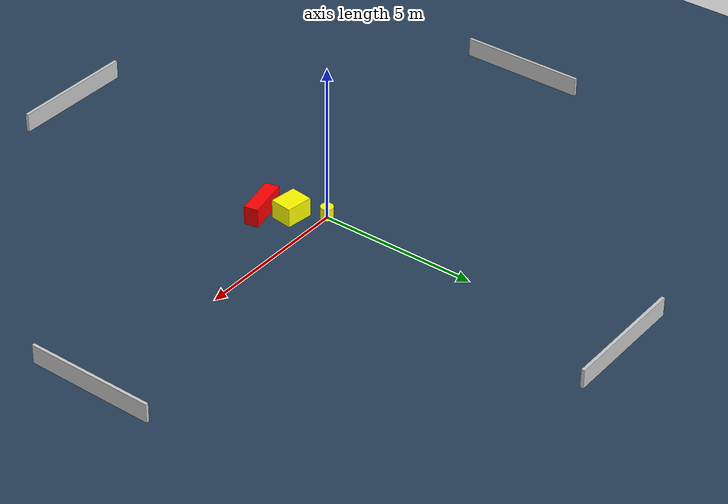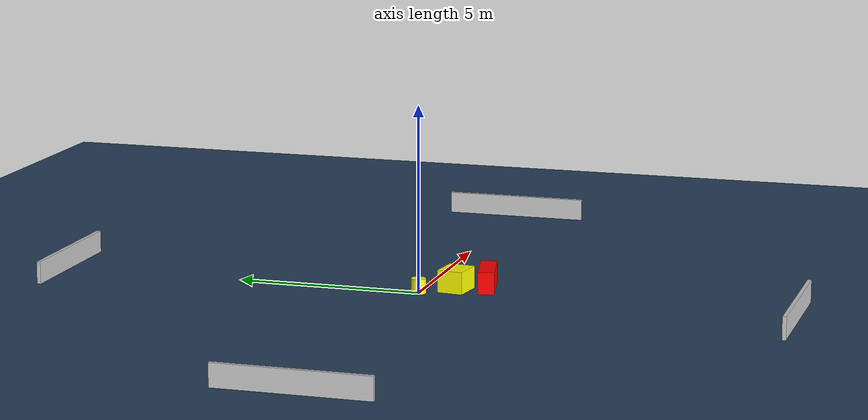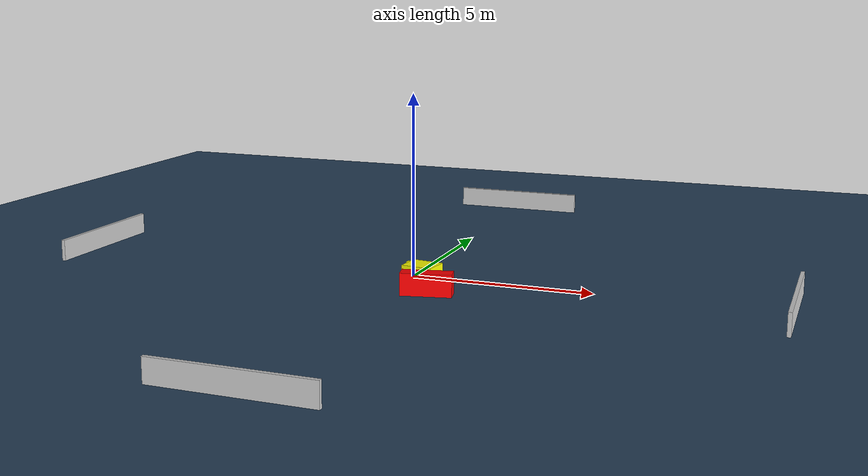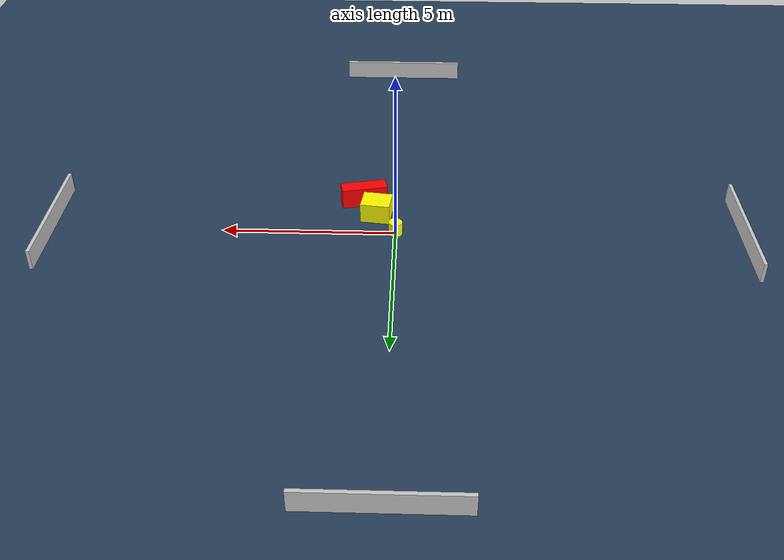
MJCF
<?xml version="1.0" ?>
<mujoco model="generated_environment">
  <option timestep="0.01" integrator="RK4" cone="elliptic"/>
  <default>
    <geom density="1"/>
  </default>
  <asset>
    <texture builtin="gradient" height="3072" name="skybox" rgb1="0.3 0.5 0.7" rgb2="0 0 0" type="skybox" width="512"/>
    <texture builtin="checker" height="300" name="groundplane" rgb1="0.2 0.3 0.4" rgb2="0.1 0.2 0.3" type="2d" width="300"/>
    <material name="groundplane" reflectance="0.2" texrepeat="5 5" texture="groundplane"/>
  </asset>
  <worldbody>
    <light dir="0 0 -1" directional="true" pos="0 0 1.5"/>
    <geom condim="3" friction="0.5 0.005 0.001" material="groundplane" name="floor" pos="0 0 0" size="0 0 0.05" type="plane"/>
    <body name="walls">
      <geom name="wall_1" condim="4" pos="-10.0 0.0 0.3" rgba="0.800000011920929 0.800000011920929 0.800000011920929 1.0" size="0.05 2.0 0.3" type="box"/>
      <geom name="wall_2" condim="4" pos="10.0 0.0 0.3" rgba="0.800000011920929 0.800000011920929 0.800000011920929 1.0" size="0.05 2.0 0.3" type="box"/>
      <geom name="wall_3" condim="4" pos="0.0 -10.0 0.3" rgba="0.800000011920929 0.800000011920929 0.800000011920929 1.0" size="2.0 0.05 0.3" type="box"/>
      <geom name="wall_4" condim="4" pos="0.0 10.0 0.3" rgba="0.800000011920929 0.800000011920929 0.800000011920929 1.0" size="2.0 0.05 0.3" type="box"/>
    </body>
    <body name="robot">
      <joint name="joint_x" type="slide" pos="0 0 0" axis="1 0 0"/>
      <joint name="joint_y" type="slide" pos="0 0 0" axis="0 1 0"/>
      <geom name="robot" type="cylinder" pos="0.0 0.0 0.2" size="0.2 0.2 0.0" mass="5.0" friction="1.0 0.005 0.0001" condim="4" rgba="1.0 1.0 0.0 1.0"/>
    </body>
    <body name="obstacle_1_movable">
      <geom name="obstacle_1_movable" condim="4" pos="0.5835429859058088 -0.8524871452947982 0.3" euler="0 0 262.80611911598885" friction="0.0 0.005 0.001" rgba="1.0 1.0 0.0 1.0" size="0.3519043426019527 0.4282754403675053 0.3" type="box" mass="0.1"/>
      <joint type="free"/>
    </body>
    <body name="obstacle_2_static">
      <geom name="obstacle_2_static" condim="4" pos="0.9921023970635494 -1.6080692873706277 0.3" euler="0 0 101.88252491259482" friction="0.0 0.005 0.001" rgba="1.0 0.0 0.0 1.0" size="0.22097444081106504 0.6781162313266876 0.3" type="box"/>
    </body>
  </worldbody>
  <actuator>
    <motor name="actuator_x" joint="joint_x" gear="1" ctrlrange="-1 1"/>
    <motor name="actuator_y" joint="joint_y" gear="1" ctrlrange="-1 1"/>
  </actuator>
</mujoco>
